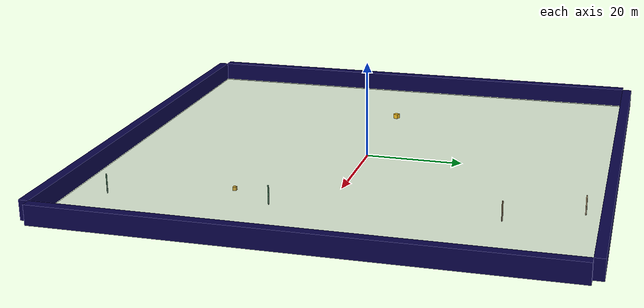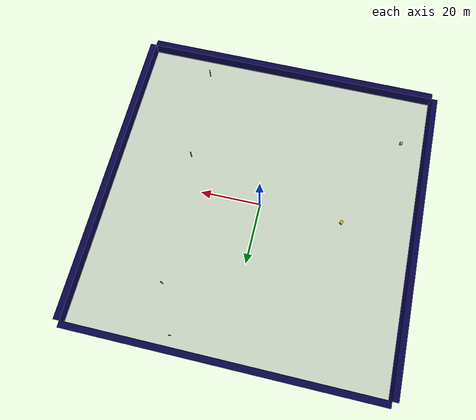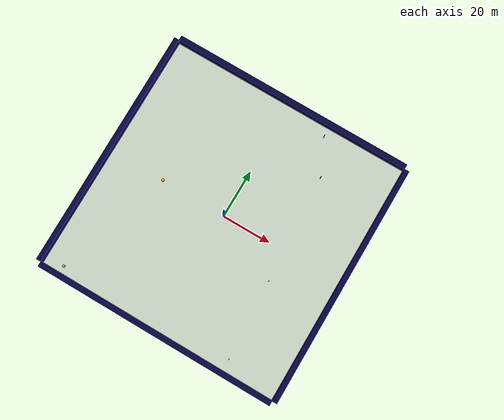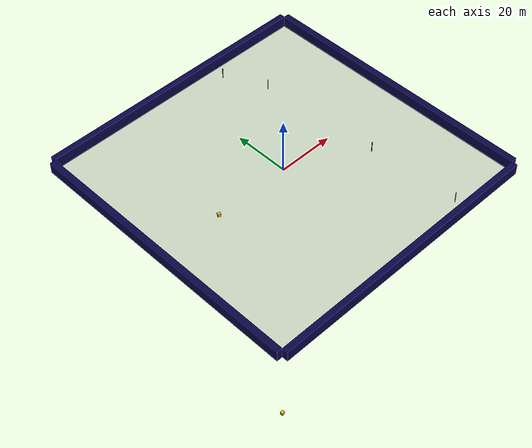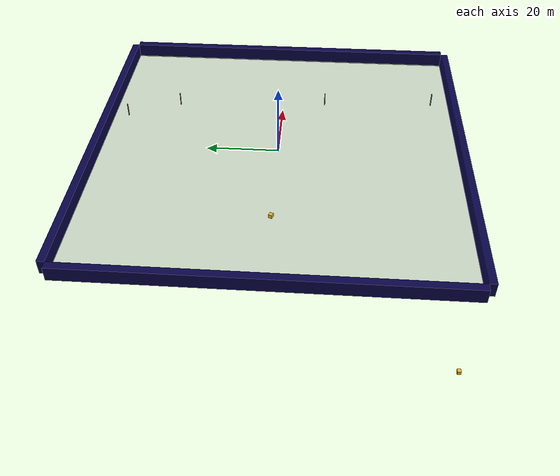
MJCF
<mujoco model="unnamed_model">
  <default>
    <default class="/" />
    <default class="border/" />
    <default class="border_1/" />
    <default class="border_2/" />
    <default class="border_3/" />
    <default class="placeholder/" />
    <default class="agent/" />
    <default class="tree0/" />
    <default class="tree1/" />
    <default class="tree2/" />
    <default class="tree3/" />
  </default>
  <worldbody>
    <body name="border/">
      <body name="border/border" pos="0 51 2">
        <geom name="border/border_geom" class="border/" type="box" size="50 1 2" rgba="0.035000000000000003 0.016 0.28999999999999998 1" />
      </body>
    </body>
    <body name="border_1/">
      <body name="border_1/border" pos="0 -51 2">
        <geom name="border_1/border_geom" class="border_1/" type="box" size="50 1 2" rgba="0.035000000000000003 0.016 0.28999999999999998 1" />
      </body>
    </body>
    <body name="border_2/">
      <body name="border_2/border" pos="51 0 2">
        <geom name="border_2/border_geom" class="border_2/" type="box" size="1 50 2" rgba="0.035000000000000003 0.016 0.28999999999999998 1" />
      </body>
    </body>
    <body name="border_3/">
      <body name="border_3/border" pos="-51 0 2">
        <geom name="border_3/border_geom" class="border_3/" type="box" size="1 50 2" rgba="0.035000000000000003 0.016 0.28999999999999998 1" />
      </body>
    </body>
    <body name="placeholder/">
      <body name="placeholder/placeholder" pos="-49 -49 -30">
        <geom name="placeholder/box_geom" class="placeholder/" type="box" size="0.5 0.5 0.5" rgba="0.94899999999999995 0.74509999999999998 0.1333 1" euler="0 0 0" />
      </body>
    </body>
    <body euler="0 0 -23.402997013186166" name="agent/">
      <joint name="agent/boxagent_freeJoint/" class="/" type="free" />
      <body name="agent/agent" pos="-25.046050000000001 -10.820499999999996 0.5" euler="0 0 0">
        <geom name="agent/boxagent_geom" class="agent/" type="box" size="0.5 0.5 0.5" rgba="0.94899999999999995 0.74509999999999998 0.1333 1" euler="0 0 0" />
        <camera name="agent/boxagent_camera" class="agent/" pos="1 0 0.5" euler="90 0 0" />
      </body>
    </body>
    <body name="tree0/">
      <body name="tree0/tree0" pos="27.08625 -12.572400000000002 0.10000000000000001" euler="0 0 -109.04086782451681">
        <geom name="tree0/tree_geom" class="tree0/" type="box" size="0.10000000000000001 0.10000000000000001 2" rgba="0.396078431372549 0.6705882352941176 0.48627450980392156 1.0" />
      </body>
    </body>
    <body name="tree1/">
      <body name="tree1/tree1" pos="28.969999999999999 -45.301699999999997 0.10000000000000001" euler="0 0 -140.23603043254994">
        <geom name="tree1/tree_geom" class="tree1/" type="box" size="0.10000000000000001 0.10000000000000001 2" rgba="0.396078431372549 0.6705882352941176 0.48627450980392156 1.0" />
      </body>
    </body>
    <body name="tree2/">
      <body name="tree2/tree2" pos="17.4146 46.70089999999999 0.10000000000000001" euler="0 0 -102.73119706748568">
        <geom name="tree2/tree_geom" class="tree2/" type="box" size="0.10000000000000001 0.10000000000000001 2" rgba="0.6980392156862745 0.6 0.43137254901960786 1.0" />
      </body>
    </body>
    <body name="tree3/">
      <body name="tree3/tree3" pos="24.275850000000002 31.893599999999992 0.10000000000000001" euler="0 0 34.963631048160266">
        <geom name="tree3/tree_geom" class="tree3/" type="box" size="0.10000000000000001 0.10000000000000001 2" rgba="0.6980392156862745 0.6 0.43137254901960786 1.0" />
      </body>
    </body>
    <geom name="base_plane" class="/" type="plane" size="50 50 0.10000000000000001" />
  </worldbody>
</mujoco>
